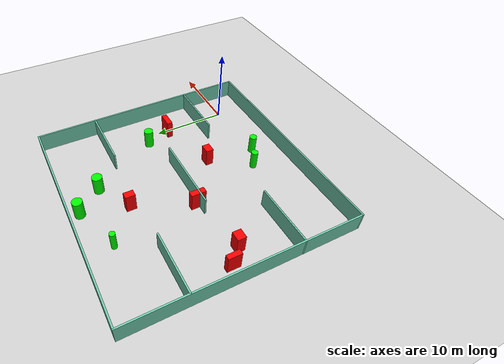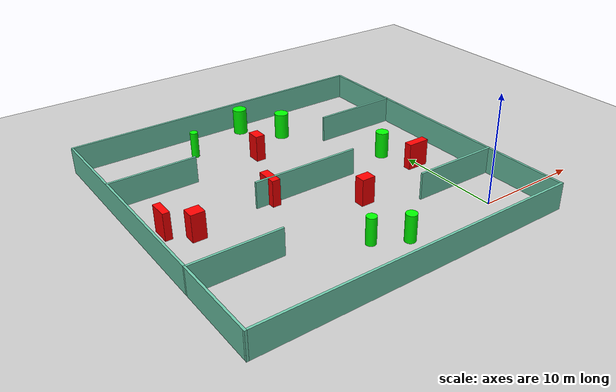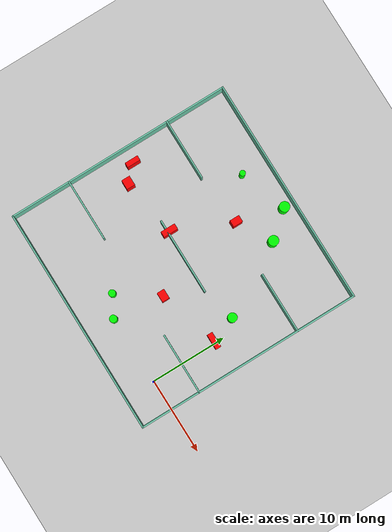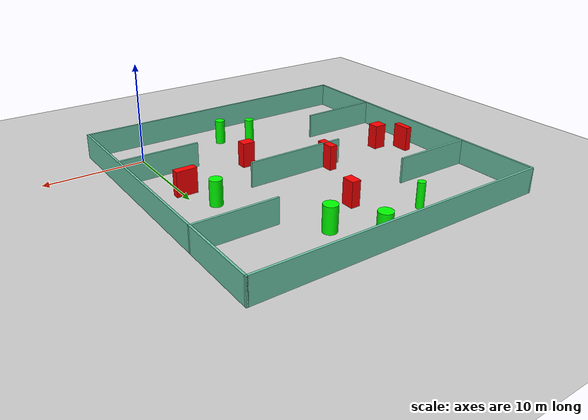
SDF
<sdf version="1.7">
 <world name="default">
  <light name="sun" type="directional">
   <pose>0 0 10 0 -0 0</pose>
   <diffuse>0.8 0.8 0.8 1</diffuse>
   <specular>0.2 0.2 0.2 1</specular>
   <attenuation>
    <range>1000</range>
    <constant>0.9</constant>
    <linear>0.01</linear>
    <quadratic>0.001</quadratic>
   </attenuation>
   <direction>-0.5 0.1 -0.9</direction>
   <spot><inner_angle>0</inner_angle><outer_angle>0</outer_angle><falloff>0</falloff></spot>
  </light>
  <model name="ground_plane">
   <static>1</static>
   <link name="link">
    <collision name="collision">
     <geometry><plane><normal>0 0 1</normal><size>100 100</size></plane></geometry>
     <surface>
      <contact><collide_bitmask>65535</collide_bitmask></contact>
      <friction><ode><mu>100</mu><mu2>50</mu2></ode></friction>
     </surface>
    </collision>
    <visual name="visual">
     <cast_shadows>0</cast_shadows>
     <geometry><plane><normal>0 0 1</normal><size>100 100</size></plane></geometry>
     <material>
      <script><uri>file://media/materials/scripts/gazebo.material</uri><name>Gazebo/Grey</name></script>
     </material>
    </visual>
   </link>
  </model>
  <gravity>0 0 -9.8</gravity>
  <magnetic_field>6e-06 2.3e-05 -4.2e-05</magnetic_field>
  <atmosphere type="adiabatic"/>
  <physics type="ode">
   <max_step_size>0.001</max_step_size>
   <real_time_factor>1</real_time_factor>
   <real_time_update_rate>1000</real_time_update_rate>
  </physics>
  <scene><ambient>0.4 0.4 0.4 1</ambient><background>0.7 0.7 0.7 1</background><shadows>1</shadows></scene>
  <spherical_coordinates>
   <surface_model>EARTH_WGS84</surface_model>
   <latitude_deg>0</latitude_deg>
   <longitude_deg>0</longitude_deg>
   <elevation>0</elevation>
   <heading_deg>0</heading_deg>
  </spherical_coordinates>
  <model name="my_base_walls">
   <link name="Wall_10">
    <collision name="Wall_10_Collision">
     <geometry><box><size>8.2 0.2 2.5</size></box></geometry>
     <pose>0 0 1.25 0 -0 0</pose>
    </collision>
    <visual name="Wall_10_Visual">
     <pose>0 0 1.25 0 -0 0</pose>
     <geometry><box><size>8.2 0.2 2.5</size></box></geometry>
     <material>
      <script><uri>file://media/materials/scripts/gazebo.material</uri><name>Gazebo/Grey</name></script>
      <ambient>0.435294 0.796078 0.67451 1</ambient>
     </material>
     <meta><layer>0</layer></meta>
    </visual>
    <pose>-11 -7 0 0 -0 0</pose>
   </link>
   <link name="Wall_12">
    <collision name="Wall_12_Collision">
     <geometry><box><size>8.2 0.2 2.5</size></box></geometry>
     <pose>0 0 1.25 0 -0 0</pose>
    </collision>
    <visual name="Wall_12_Visual">
     <pose>0 0 1.25 0 -0 0</pose>
     <geometry><box><size>8.2 0.2 2.5</size></box></geometry>
     <material>
      <script><uri>file://media/materials/scripts/gazebo.material</uri><name>Gazebo/Grey</name></script>
      <ambient>0.435294 0.796078 0.67451 1</ambient>
     </material>
     <meta><layer>0</layer></meta>
    </visual>
    <pose>-11 7 0 0 -0 0</pose>
   </link>
   <link name="Wall_14">
    <collision name="Wall_14_Collision">
     <geometry><box><size>8.2 0.2 2.5</size></box></geometry>
     <pose>0 0 1.25 0 -0 0</pose>
    </collision>
    <visual name="Wall_14_Visual">
     <pose>0 0 1.25 0 -0 0</pose>
     <geometry><box><size>8.2 0.2 2.5</size></box></geometry>
     <material>
      <script><uri>file://media/materials/scripts/gazebo.material</uri><name>Gazebo/Grey</name></script>
      <ambient>0.435294 0.796078 0.67451 1</ambient>
     </material>
     <meta><layer>0</layer></meta>
    </visual>
    <pose>11 7 0 0 -0 3.14159</pose>
   </link>
   <link name="Wall_16">
    <collision name="Wall_16_Collision">
     <geometry><box><size>10.2 0.2 2.5</size></box></geometry>
     <pose>0 0 1.25 0 -0 0</pose>
    </collision>
    <visual name="Wall_16_Visual">
     <pose>0 0 1.25 0 -0 0</pose>
     <geometry><box><size>10.2 0.2 2.5</size></box></geometry>
     <material>
      <script><uri>file://media/materials/scripts/gazebo.material</uri><name>Gazebo/Grey</name></script>
      <ambient>0.435294 0.796078 0.67451 1</ambient>
     </material>
     <meta><layer>0</layer></meta>
    </visual>
    <pose>0 0 0 0 -0 3.14159</pose>
   </link>
   <link name="Wall_2">
    <collision name="Wall_2_Collision">
     <geometry><box><size>30.2 0.2 2.5</size></box></geometry>
     <pose>0 0 1.25 0 -0 0</pose>
    </collision>
    <visual name="Wall_2_Visual">
     <pose>0 0 1.25 0 -0 0</pose>
     <geometry><box><size>30.2 0.2 2.5</size></box></geometry>
     <material>
      <script><uri>file://media/materials/scripts/gazebo.material</uri><name>Gazebo/Grey</name></script>
      <ambient>0.435294 0.796078 0.67451 1</ambient>
     </material>
     <meta><layer>0</layer></meta>
    </visual>
    <pose>0 -15 0 0 -0 3.14159</pose>
   </link>
   <link name="Wall_3">
    <collision name="Wall_3_Collision">
     <geometry><box><size>30.2 0.2 2.5</size></box></geometry>
     <pose>0 0 1.25 0 -0 0</pose>
    </collision>
    <visual name="Wall_3_Visual">
     <pose>0 0 1.25 0 -0 0</pose>
     <geometry><box><size>30.2 0.2 2.5</size></box></geometry>
     <material>
      <script><uri>file://media/materials/scripts/gazebo.material</uri><name>Gazebo/Grey</name></script>
      <ambient>0.435294 0.796078 0.67451 1</ambient>
     </material>
     <meta><layer>0</layer></meta>
    </visual>
    <pose>-15 0 0 0 -0 1.5708</pose>
   </link>
   <link name="Wall_4">
    <collision name="Wall_4_Collision">
     <geometry><box><size>30.2 0.2 2.5</size></box></geometry>
     <pose>0 0 1.25 0 -0 0</pose>
    </collision>
    <visual name="Wall_4_Visual">
     <pose>0 0 1.25 0 -0 0</pose>
     <geometry><box><size>30.2 0.2 2.5</size></box></geometry>
     <material>
      <script><uri>file://media/materials/scripts/gazebo.material</uri><name>Gazebo/Grey</name></script>
      <ambient>0.435294 0.796078 0.67451 1</ambient>
     </material>
     <meta><layer>0</layer></meta>
    </visual>
    <pose>0 15 0 0 -0 0</pose>
   </link>
   <link name="Wall_6">
    <collision name="Wall_6_Collision">
     <geometry><box><size>30.2 0.2 2.5</size></box></geometry>
     <pose>0 0 1.25 0 -0 0</pose>
    </collision>
    <visual name="Wall_6_Visual">
     <pose>0 0 1.25 0 -0 0</pose>
     <geometry><box><size>30.2 0.2 2.5</size></box></geometry>
     <material>
      <script><uri>file://media/materials/scripts/gazebo.material</uri><name>Gazebo/Grey</name></script>
      <ambient>0.435294 0.796078 0.67451 1</ambient>
     </material>
     <meta><layer>0</layer></meta>
    </visual>
    <pose>15 0 0 0 -0 1.5708</pose>
   </link>
   <link name="Wall_8">
    <collision name="Wall_8_Collision">
     <geometry><box><size>8.2 0.2 2.5</size></box></geometry>
     <pose>0 0 1.25 0 -0 0</pose>
    </collision>
    <visual name="Wall_8_Visual">
     <pose>0 0 1.25 0 -0 0</pose>
     <geometry><box><size>8.2 0.2 2.5</size></box></geometry>
     <material>
      <script><uri>file://media/materials/scripts/gazebo.material</uri><name>Gazebo/Grey</name></script>
      <ambient>0.435294 0.796078 0.67451 1</ambient>
     </material>
     <meta><layer>0</layer></meta>
    </visual>
    <pose>11 -7 0 0 -0 3.14159</pose>
   </link>
   <static>1</static>
   <pose>-11 11 0 0 -0 0</pose>
  </model>
  <model name="cylinder1">
   <static>1</static>
   <link name="link">
    <inertial>
     <mass>1</mass>
     <inertia><ixx>0.5</ixx><ixy>0</ixy><ixz>0</ixz><iyy>0.5</iyy><iyz>0</iyz><izz>1</izz></inertia>
    </inertial>
    <collision name="collision">
     <geometry><cylinder><radius>0.4941867503805253</radius><length>2.5</length></cylinder></geometry>
    </collision>
    <visual name="visual">
     <geometry><cylinder><radius>0.4941867503805253</radius><length>2.5</length></cylinder></geometry>
     <material>
      <ambient>0 1 0 1</ambient>
      <diffuse>0 1 0 1</diffuse>
      <specular>0.1 0.1 0.1 1</specular>
      <emissive>0 0 0 0</emissive>
     </material>
    </visual>
   </link>
   <pose>-9.002021034587674 -0.16699508715681866 1.25 0 0 0</pose>
  </model>
  <model name="cylinder2">
   <static>1</static>
   <link name="link">
    <inertial>
     <mass>1</mass>
     <inertia><ixx>0.5</ixx><ixy>0</ixy><ixz>0</ixz><iyy>0.5</iyy><iyz>0</iyz><izz>1</izz></inertia>
    </inertial>
    <collision name="collision">
     <geometry><cylinder><radius>0.6065588756554887</radius><length>2.5</length></cylinder></geometry>
    </collision>
    <visual name="visual">
     <geometry><cylinder><radius>0.6065588756554887</radius><length>2.5</length></cylinder></geometry>
     <material>
      <ambient>0 1 0 1</ambient>
      <diffuse>0 1 0 1</diffuse>
      <specular>0.1 0.1 0.1 1</specular>
      <emissive>0 0 0 0</emissive>
     </material>
    </visual>
   </link>
   <pose>-1.535022775566624 12.15665689938534 1.25 0 0 0</pose>
  </model>
  <model name="cylinder3">
   <static>1</static>
   <link name="link">
    <inertial>
     <mass>1</mass>
     <inertia><ixx>0.5</ixx><ixy>0</ixy><ixz>0</ixz><iyy>0.5</iyy><iyz>0</iyz><izz>1</izz></inertia>
    </inertial>
    <collision name="collision">
     <geometry><cylinder><radius>0.6684462804219551</radius><length>2.5</length></cylinder></geometry>
    </collision>
    <visual name="visual">
     <geometry><cylinder><radius>0.6684462804219551</radius><length>2.5</length></cylinder></geometry>
     <material>
      <ambient>0 1 0 1</ambient>
      <diffuse>0 1 0 1</diffuse>
      <specular>0.1 0.1 0.1 1</specular>
      <emissive>0 0 0 0</emissive>
     </material>
    </visual>
   </link>
   <pose>-9.609905705343811 24.643911364646627 1.25 0 0 0</pose>
  </model>
  <model name="cylinder4">
   <static>1</static>
   <link name="link">
    <inertial>
     <mass>1</mass>
     <inertia><ixx>0.5</ixx><ixy>0</ixy><ixz>0</ixz><iyy>0.5</iyy><iyz>0</iyz><izz>1</izz></inertia>
    </inertial>
    <collision name="collision">
     <geometry><cylinder><radius>0.3703236663960256</radius><length>2.5</length></cylinder></geometry>
    </collision>
    <visual name="visual">
     <geometry><cylinder><radius>0.3703236663960256</radius><length>2.5</length></cylinder></geometry>
     <material>
      <ambient>0 1 0 1</ambient>
      <diffuse>0 1 0 1</diffuse>
      <specular>0.1 0.1 0.1 1</specular>
      <emissive>0 0 0 0</emissive>
     </material>
    </visual>
   </link>
   <pose>-15.783503115149887 22.494374484849804 1.25 0 0 0</pose>
  </model>
  <model name="cylinder5">
   <static>1</static>
   <link name="link">
    <inertial>
     <mass>1</mass>
     <inertia><ixx>0.5</ixx><ixy>0</ixy><ixz>0</ixz><iyy>0.5</iyy><iyz>0</iyz><izz>1</izz></inertia>
    </inertial>
    <collision name="collision">
     <geometry><cylinder><radius>0.45513244958396015</radius><length>2.5</length></cylinder></geometry>
    </collision>
    <visual name="visual">
     <geometry><cylinder><radius>0.45513244958396015</radius><length>2.5</length></cylinder></geometry>
     <material>
      <ambient>0 1 0 1</ambient>
      <diffuse>0 1 0 1</diffuse>
      <specular>0.1 0.1 0.1 1</specular>
      <emissive>0 0 0 0</emissive>
     </material>
    </visual>
   </link>
   <pose>-11.715760507777919 1.3361722106709903 1.25 0 0 0</pose>
  </model>
  <model name="cylinder6">
   <static>1</static>
   <link name="link">
    <inertial>
     <mass>1</mass>
     <inertia><ixx>0.5</ixx><ixy>0</ixy><ixz>0</ixz><iyy>0.5</iyy><iyz>0</iyz><izz>1</izz></inertia>
    </inertial>
    <collision name="collision">
     <geometry><cylinder><radius>0.6703394700796736</radius><length>2.5</length></cylinder></geometry>
    </collision>
    <visual name="visual">
     <geometry><cylinder><radius>0.6703394700796736</radius><length>2.5</length></cylinder></geometry>
     <material>
      <ambient>0 1 0 1</ambient>
      <diffuse>0 1 0 1</diffuse>
      <specular>0.1 0.1 0.1 1</specular>
      <emissive>0 0 0 0</emissive>
     </material>
    </visual>
   </link>
   <pose>-6.814497376258101 21.315798569036257 1.25 0 0 0</pose>
  </model>
  <model name="box1">
   <static>1</static>
   <link name="link">
    <inertial>
     <mass>1</mass>
     <inertia><ixx>0.083</ixx><ixy>0</ixy><ixz>0</ixz><iyy>0.083</iyy><iyz>0</iyz><izz>0.083</izz></inertia>
    </inertial>
    <collision name="collision">
     <geometry><box><size>0.6342027900521318 1.7721194781459428 2.5</size></box></geometry>
    </collision>
    <visual name="visual">
     <geometry><box><size>0.6342027900521318 1.7721194781459428 2.5</size></box></geometry>
     <material>
      <ambient>1 0 0 1</ambient>
      <diffuse>1 0 0 1</diffuse>
      <specular>0.1 0.1 0.1 1</specular>
      <emissive>0 0 0 0</emissive>
     </material>
    </visual>
    <sensor name="my_contact" type="contact">
     <contact><collision>box_collision</collision><topic>__default_topic__</topic></contact>
    </sensor>
   </link>
   <pose>-24.048065929477694 11.871615496556489 1.25 0 0 0</pose>
  </model>
  <model name="box2">
   <static>1</static>
   <link name="link">
    <inertial>
     <mass>1</mass>
     <inertia><ixx>0.083</ixx><ixy>0</ixy><ixz>0</ixz><iyy>0.083</iyy><iyz>0</iyz><izz>0.083</izz></inertia>
    </inertial>
    <collision name="collision">
     <geometry><box><size>1.2862765441307138 1.000339535585436 2.5</size></box></geometry>
    </collision>
    <visual name="visual">
     <geometry><box><size>1.2862765441307138 1.000339535585436 2.5</size></box></geometry>
     <material>
      <ambient>1 0 0 1</ambient>
      <diffuse>1 0 0 1</diffuse>
      <specular>0.1 0.1 0.1 1</specular>
      <emissive>0 0 0 0</emissive>
     </material>
    </visual>
    <sensor name="my_contact" type="contact">
     <contact><collision>box_collision</collision><topic>__default_topic__</topic></contact>
    </sensor>
   </link>
   <pose>-8.20385539188834 6.443698859431889 1.25 0 0 0</pose>
  </model>
  <model name="box3">
   <static>1</static>
   <link name="link">
    <inertial>
     <mass>1</mass>
     <inertia><ixx>0.083</ixx><ixy>0</ixy><ixz>0</ixz><iyy>0.083</iyy><iyz>0</iyz><izz>0.083</izz></inertia>
    </inertial>
    <collision name="collision">
     <geometry><box><size>1.27366764854489 1.1205273809313216 2.5</size></box></geometry>
    </collision>
    <visual name="visual">
     <geometry><box><size>1.27366764854489 1.1205273809313216 2.5</size></box></geometry>
     <material>
      <ambient>1 0 0 1</ambient>
      <diffuse>1 0 0 1</diffuse>
      <specular>0.1 0.1 0.1 1</specular>
      <emissive>0 0 0 0</emissive>
     </material>
    </visual>
    <sensor name="my_contact" type="contact">
     <contact><collision>box_collision</collision><topic>__default_topic__</topic></contact>
    </sensor>
   </link>
   <pose>-22.11982945865318 10.063776100668335 1.25 0 0 0</pose>
  </model>
  <model name="box4">
   <static>1</static>
   <link name="link">
    <inertial>
     <mass>1</mass>
     <inertia><ixx>0.083</ixx><ixy>0</ixy><ixz>0</ixz><iyy>0.083</iyy><iyz>0</iyz><izz>0.083</izz></inertia>
    </inertial>
    <collision name="collision">
     <geometry><box><size>2.0718505200519246 0.7305031229421308 2.5</size></box></geometry>
    </collision>
    <visual name="visual">
     <geometry><box><size>2.0718505200519246 0.7305031229421308 2.5</size></box></geometry>
     <material>
      <ambient>1 0 0 1</ambient>
      <diffuse>1 0 0 1</diffuse>
      <specular>0.1 0.1 0.1 1</specular>
      <emissive>0 0 0 0</emissive>
     </material>
    </visual>
    <sensor name="my_contact" type="contact">
     <contact><collision>box_collision</collision><topic>__default_topic__</topic></contact>
    </sensor>
   </link>
   <pose>-0.3161149204493512 8.7836633595509 1.25 0 0 0</pose>
  </model>
  <model name="box5">
   <static>1</static>
   <link name="link">
    <inertial>
     <mass>1</mass>
     <inertia><ixx>0.083</ixx><ixy>0</ixy><ixz>0</ixz><iyy>0.083</iyy><iyz>0</iyz><izz>0.083</izz></inertia>
    </inertial>
    <collision name="collision">
     <geometry><box><size>0.9096534680236745 1.284443289093732 2.5</size></box></geometry>
    </collision>
    <visual name="visual">
     <geometry><box><size>0.9096534680236745 1.284443289093732 2.5</size></box></geometry>
     <material>
      <ambient>1 0 0 1</ambient>
      <diffuse>1 0 0 1</diffuse>
      <specular>0.1 0.1 0.1 1</specular>
      <emissive>0 0 0 0</emissive>
     </material>
    </visual>
    <sensor name="my_contact" type="contact">
     <contact><collision>box_collision</collision><topic>__default_topic__</topic></contact>
    </sensor>
   </link>
   <pose>-11.219429803994284 18.735756562293574 1.25 0 0 0</pose>
  </model>
  <model name="box6">
   <static>1</static>
   <link name="link">
    <inertial>
     <mass>1</mass>
     <inertia><ixx>0.083</ixx><ixy>0</ixy><ixz>0</ixz><iyy>0.083</iyy><iyz>0</iyz><izz>0.083</izz></inertia>
    </inertial>
    <collision name="collision">
     <geometry><box><size>0.7689411877251799 1.9541542770859537 2.5</size></box></geometry>
    </collision>
    <visual name="visual">
     <geometry><box><size>0.7689411877251799 1.9541542770859537 2.5</size></box></geometry>
     <material>
      <ambient>1 0 0 1</ambient>
      <diffuse>1 0 0 1</diffuse>
      <specular>0.1 0.1 0.1 1</specular>
      <emissive>0 0 0 0</emissive>
     </material>
    </visual>
    <sensor name="my_contact" type="contact">
     <contact><collision>box_collision</collision><topic>__default_topic__</topic></contact>
    </sensor>
   </link>
   <pose>-14.534300770196278 11.237438785466626 1.25 0 0 0</pose>
  </model>
 </world>
</sdf>
